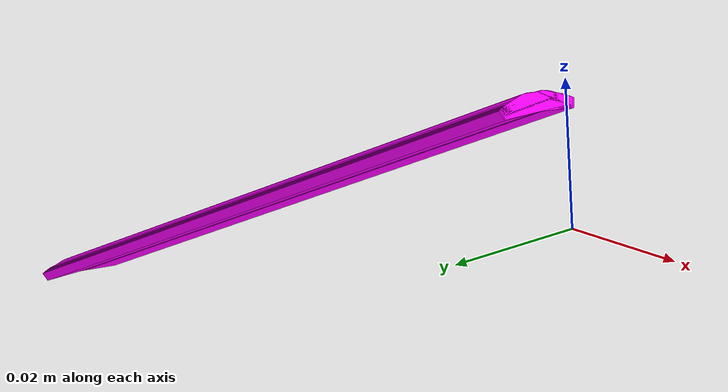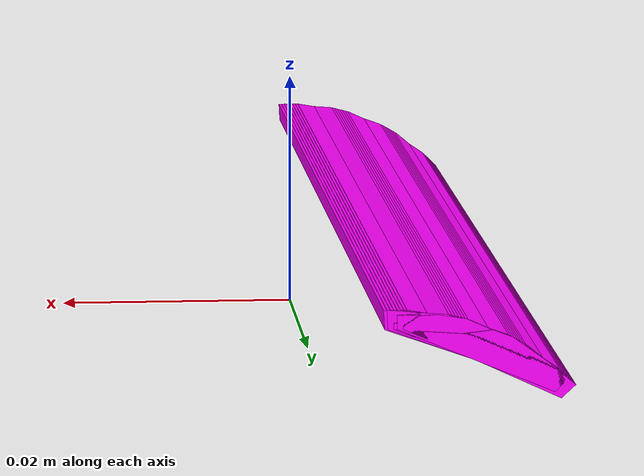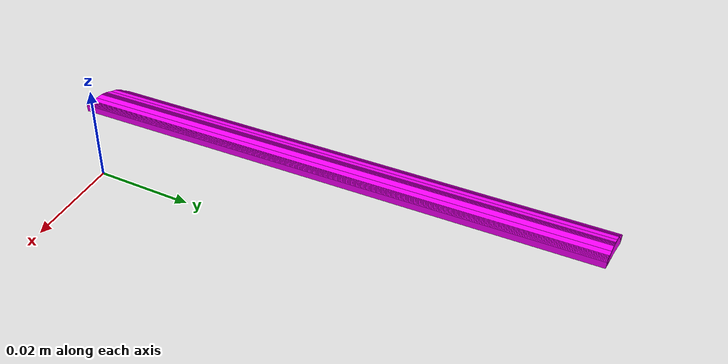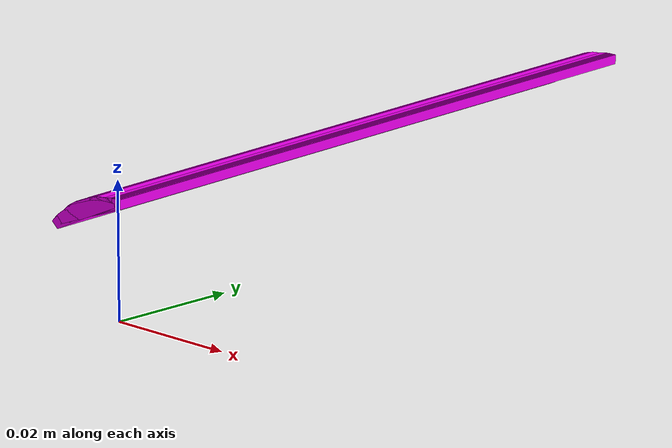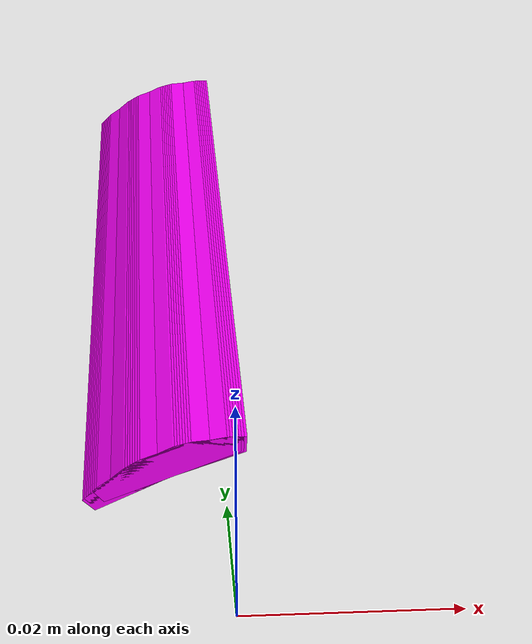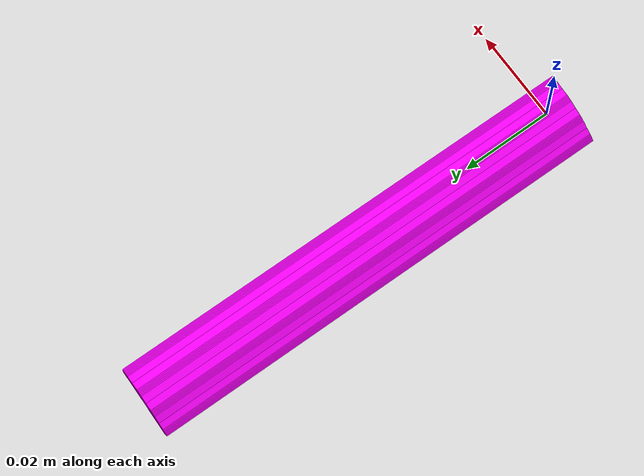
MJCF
<mujoco model="cup3">
    <asset>
      <mesh name="cup3_mesh" file="assets/cup.stl" scale="0.7 2 0.7" />
    </asset>

      <worldbody>
        <body name="cup3">
          <geom type="mesh" mesh="cup3_mesh" pos="0 0 0" euler='1.57 -2.35619 0' rgba="1.0 0.0 1.0 1.0"/>
          <geom type="mesh" mesh="cup3_mesh" pos="0 0 0" euler='1.57 -1.57079 0' rgba="1.0 0.0 1.0 1.0"/>
          <geom type="mesh" mesh="cup3_mesh" pos="0 0 0" euler='1.57 -0.78539 0' rgba="1.0 0.0 1.0 1.0"/>
          <geom type="mesh" mesh="cup3_mesh" pos="0 0 0" euler='1.57 0 0' rgba="1.0 0.0 1.0 1.0"/>
          <geom type="mesh" mesh="cup3_mesh" pos="0 0 0" euler='1.57 0.78539 0' rgba="1.0 0.0 1.0 1.0"/>
          <geom type="mesh" mesh="cup3_mesh" pos="0 0 0" euler='1.57 1.57079 0' rgba="1.0 0.0 1.0 1.0"/>
          <geom type="mesh" mesh="cup3_mesh" pos="0 0 0" euler='1.57 2.35619 0' rgba="1.0 0.0 1.0 1.0"/>
          <geom type="mesh" mesh="cup3_mesh" pos="0 0 0" euler='1.57 3.14159 0' rgba="1.0 0.0 1.0 1.0"/>
          <joint name="cup3_joint" type="free"/>
        </body>
      </worldbody>

  </mujoco>
